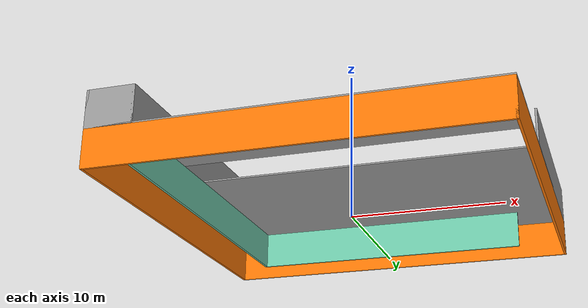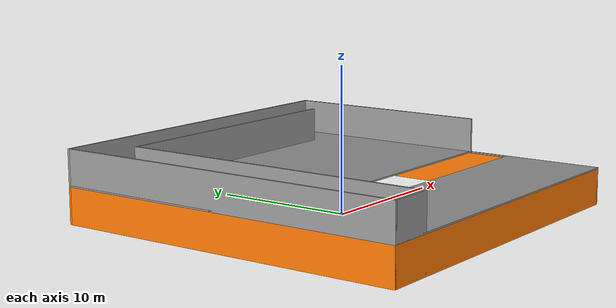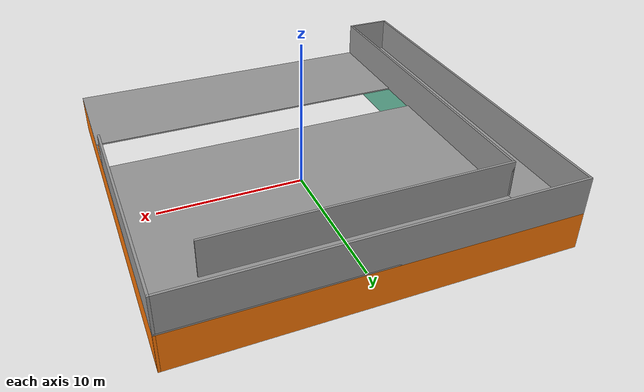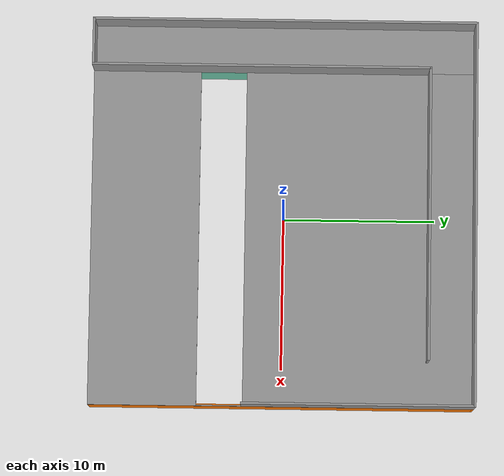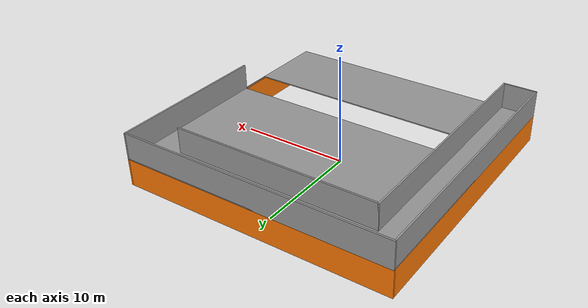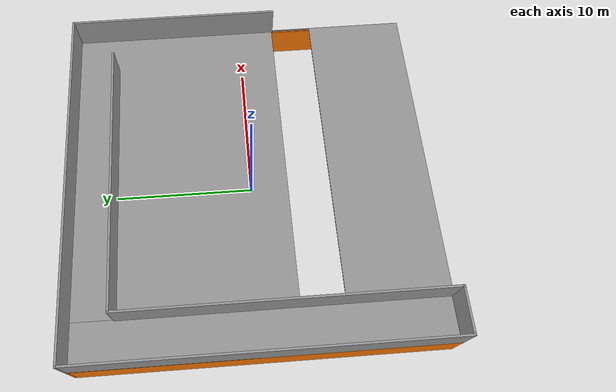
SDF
<?xml version='1.0'?>
<sdf version='1.7'>
  <model name='smart_house_2'>
    <link name='Floor_3'>
      <pose>0 0 2.5 0 -0 0</pose>
      <self_collide>0</self_collide>
      <enable_wind>0</enable_wind>
      <kinematic>0</kinematic>
      <visual name='Floor_3_Visual_0'>
        <pose>-11.0375 0 0.05 0 -0 0</pose>
        <geometry>
          <box>
            <size>3.075 25.15 0.1</size>
          </box>
        </geometry>
        <material>
          <script>
            <uri>file://media/materials/scripts/gazebo.material</uri>
            <name>Gazebo/Grey</name>
          </script>
          <ambient>1 1 1 1</ambient>
          <shader type='pixel'/>
        </material>
        <meta>
          <layer>1</layer>
        </meta>
        <transparency>0</transparency>
        <cast_shadows>1</cast_shadows>
      </visual>
      <visual name='Floor_3_Visual_1'>
        <pose>1.5375 -9.0375 0.05 0 -0 0</pose>
        <geometry>
          <box>
            <size>22.075 7.075 0.1</size>
          </box>
        </geometry>
        <material>
          <script>
            <uri>file://media/materials/scripts/gazebo.material</uri>
            <name>Gazebo/Grey</name>
          </script>
          <ambient>1 1 1 1</ambient>
          <shader type='pixel'/>
        </material>
        <meta>
          <layer>1</layer>
        </meta>
        <transparency>0</transparency>
        <cast_shadows>1</cast_shadows>
      </visual>
      <visual name='Floor_3_Visual_2'>
        <pose>12.5375 3.5375 0.05 0 -0 0</pose>
        <geometry>
          <box>
            <size>0.075 18.075 0.1</size>
          </box>
        </geometry>
        <material>
          <script>
            <uri>file://media/materials/scripts/gazebo.material</uri>
            <name>Gazebo/Grey</name>
          </script>
          <ambient>1 1 1 1</ambient>
          <shader type='pixel'/>
        </material>
        <meta>
          <layer>1</layer>
        </meta>
        <transparency>0</transparency>
        <cast_shadows>1</cast_shadows>
      </visual>
      <visual name='Floor_3_Visual_3'>
        <pose>1.5 5.0375 0.05 0 -0 0</pose>
        <geometry>
          <box>
            <size>22 15.075 0.1</size>
          </box>
        </geometry>
        <material>
          <script>
            <uri>file://media/materials/scripts/gazebo.material</uri>
            <name>Gazebo/Grey</name>
          </script>
          <ambient>1 1 1 1</ambient>
          <shader type='pixel'/>
        </material>
        <meta>
          <layer>1</layer>
        </meta>
        <transparency>0</transparency>
        <cast_shadows>1</cast_shadows>
      </visual>
      <collision name='Floor_3_Collision_0'>
        <laser_retro>0</laser_retro>
        <max_contacts>10</max_contacts>
        <pose>-11.0375 0 0.05 0 -0 0</pose>
        <geometry>
          <box>
            <size>3.075 25.15 0.1</size>
          </box>
        </geometry>
        <surface>
          <friction>
            <ode>
              <mu>1</mu>
              <mu2>1</mu2>
              <fdir1>0 0 0</fdir1>
              <slip1>0</slip1>
              <slip2>0</slip2>
            </ode>
            <torsional>
              <coefficient>1</coefficient>
              <patch_radius>0</patch_radius>
              <surface_radius>0</surface_radius>
              <use_patch_radius>1</use_patch_radius>
              <ode>
                <slip>0</slip>
              </ode>
            </torsional>
          </friction>
          <bounce>
            <restitution_coefficient>0</restitution_coefficient>
            <threshold>1e+06</threshold>
          </bounce>
          <contact>
            <collide_without_contact>0</collide_without_contact>
            <collide_without_contact_bitmask>1</collide_without_contact_bitmask>
            <collide_bitmask>1</collide_bitmask>
            <ode>
              <soft_cfm>0</soft_cfm>
              <soft_erp>0.2</soft_erp>
              <kp>1e+13</kp>
              <kd>1</kd>
              <max_vel>0.01</max_vel>
              <min_depth>0</min_depth>
            </ode>
            <bullet>
              <split_impulse>1</split_impulse>
              <split_impulse_penetration_threshold>-0.01</split_impulse_penetration_threshold>
              <soft_cfm>0</soft_cfm>
              <soft_erp>0.2</soft_erp>
              <kp>1e+13</kp>
              <kd>1</kd>
            </bullet>
          </contact>
        </surface>
      </collision>
      <collision name='Floor_3_Collision_1'>
        <laser_retro>0</laser_retro>
        <max_contacts>10</max_contacts>
        <pose>1.5375 -9.0375 0.05 0 -0 0</pose>
        <geometry>
          <box>
            <size>22.075 7.075 0.1</size>
          </box>
        </geometry>
        <surface>
          <friction>
            <ode>
              <mu>1</mu>
              <mu2>1</mu2>
              <fdir1>0 0 0</fdir1>
              <slip1>0</slip1>
              <slip2>0</slip2>
            </ode>
            <torsional>
              <coefficient>1</coefficient>
              <patch_radius>0</patch_radius>
              <surface_radius>0</surface_radius>
              <use_patch_radius>1</use_patch_radius>
              <ode>
                <slip>0</slip>
              </ode>
            </torsional>
          </friction>
          <bounce>
            <restitution_coefficient>0</restitution_coefficient>
            <threshold>1e+06</threshold>
          </bounce>
          <contact>
            <collide_without_contact>0</collide_without_contact>
            <collide_without_contact_bitmask>1</collide_without_contact_bitmask>
            <collide_bitmask>1</collide_bitmask>
            <ode>
              <soft_cfm>0</soft_cfm>
              <soft_erp>0.2</soft_erp>
              <kp>1e+13</kp>
              <kd>1</kd>
              <max_vel>0.01</max_vel>
              <min_depth>0</min_depth>
            </ode>
            <bullet>
              <split_impulse>1</split_impulse>
              <split_impulse_penetration_threshold>-0.01</split_impulse_penetration_threshold>
              <soft_cfm>0</soft_cfm>
              <soft_erp>0.2</soft_erp>
              <kp>1e+13</kp>
              <kd>1</kd>
            </bullet>
          </contact>
        </surface>
      </collision>
      <collision name='Floor_3_Collision_2'>
        <laser_retro>0</laser_retro>
        <max_contacts>10</max_contacts>
        <pose>12.5375 3.5375 0.05 0 -0 0</pose>
        <geometry>
          <box>
            <size>0.075 18.075 0.1</size>
          </box>
        </geometry>
        <surface>
          <friction>
            <ode>
              <mu>1</mu>
              <mu2>1</mu2>
              <fdir1>0 0 0</fdir1>
              <slip1>0</slip1>
              <slip2>0</slip2>
            </ode>
            <torsional>
              <coefficient>1</coefficient>
              <patch_radius>0</patch_radius>
              <surface_radius>0</surface_radius>
              <use_patch_radius>1</use_patch_radius>
              <ode>
                <slip>0</slip>
              </ode>
            </torsional>
          </friction>
          <bounce>
            <restitution_coefficient>0</restitution_coefficient>
            <threshold>1e+06</threshold>
          </bounce>
          <contact>
            <collide_without_contact>0</collide_without_contact>
            <collide_without_contact_bitmask>1</collide_without_contact_bitmask>
            <collide_bitmask>1</collide_bitmask>
            <ode>
              <soft_cfm>0</soft_cfm>
              <soft_erp>0.2</soft_erp>
              <kp>1e+13</kp>
              <kd>1</kd>
              <max_vel>0.01</max_vel>
              <min_depth>0</min_depth>
            </ode>
            <bullet>
              <split_impulse>1</split_impulse>
              <split_impulse_penetration_threshold>-0.01</split_impulse_penetration_threshold>
              <soft_cfm>0</soft_cfm>
              <soft_erp>0.2</soft_erp>
              <kp>1e+13</kp>
              <kd>1</kd>
            </bullet>
          </contact>
        </surface>
      </collision>
      <collision name='Floor_3_Collision_3'>
        <laser_retro>0</laser_retro>
        <max_contacts>10</max_contacts>
        <pose>1.5 5.0375 0.05 0 -0 0</pose>
        <geometry>
          <box>
            <size>22 15.075 0.1</size>
          </box>
        </geometry>
        <surface>
          <friction>
            <ode>
              <mu>1</mu>
              <mu2>1</mu2>
              <fdir1>0 0 0</fdir1>
              <slip1>0</slip1>
              <slip2>0</slip2>
            </ode>
            <torsional>
              <coefficient>1</coefficient>
              <patch_radius>0</patch_radius>
              <surface_radius>0</surface_radius>
              <use_patch_radius>1</use_patch_radius>
              <ode>
                <slip>0</slip>
              </ode>
            </torsional>
          </friction>
          <bounce>
            <restitution_coefficient>0</restitution_coefficient>
            <threshold>1e+06</threshold>
          </bounce>
          <contact>
            <collide_without_contact>0</collide_without_contact>
            <collide_without_contact_bitmask>1</collide_without_contact_bitmask>
            <collide_bitmask>1</collide_bitmask>
            <ode>
              <soft_cfm>0</soft_cfm>
              <soft_erp>0.2</soft_erp>
              <kp>1e+13</kp>
              <kd>1</kd>
              <max_vel>0.01</max_vel>
              <min_depth>0</min_depth>
            </ode>
            <bullet>
              <split_impulse>1</split_impulse>
              <split_impulse_penetration_threshold>-0.01</split_impulse_penetration_threshold>
              <soft_cfm>0</soft_cfm>
              <soft_erp>0.2</soft_erp>
              <kp>1e+13</kp>
              <kd>1</kd>
            </bullet>
          </contact>
        </surface>
      </collision>
    </link>
    <link name='Wall_0'>
      <pose>0 -12.5 0 0 -0 0</pose>
      <self_collide>0</self_collide>
      <enable_wind>0</enable_wind>
      <kinematic>0</kinematic>
      <visual name='Wall_0_Visual'>
        <pose>0 0 1.25 0 -0 0</pose>
        <geometry>
          <box>
            <size>25.15 0.15 2.5</size>
          </box>
        </geometry>
        <material>
          <script>
            <uri>file://media/materials/scripts/gazebo.material</uri>
            <name>Gazebo/Grey</name>
          </script>
          <ambient>0.996078 0.47451 0.0196078 1</ambient>
          <shader type='pixel'/>
        </material>
        <meta>
          <layer>0</layer>
        </meta>
        <transparency>0</transparency>
        <cast_shadows>1</cast_shadows>
      </visual>
      <collision name='Wall_0_Collision'>
        <laser_retro>0</laser_retro>
        <max_contacts>10</max_contacts>
        <pose>0 0 1.25 0 -0 0</pose>
        <geometry>
          <box>
            <size>25.15 0.15 2.5</size>
          </box>
        </geometry>
        <surface>
          <friction>
            <ode>
              <mu>1</mu>
              <mu2>1</mu2>
              <fdir1>0 0 0</fdir1>
              <slip1>0</slip1>
              <slip2>0</slip2>
            </ode>
            <torsional>
              <coefficient>1</coefficient>
              <patch_radius>0</patch_radius>
              <surface_radius>0</surface_radius>
              <use_patch_radius>1</use_patch_radius>
              <ode>
                <slip>0</slip>
              </ode>
            </torsional>
          </friction>
          <bounce>
            <restitution_coefficient>0</restitution_coefficient>
            <threshold>1e+06</threshold>
          </bounce>
          <contact>
            <collide_without_contact>0</collide_without_contact>
            <collide_without_contact_bitmask>1</collide_without_contact_bitmask>
            <collide_bitmask>1</collide_bitmask>
            <ode>
              <soft_cfm>0</soft_cfm>
              <soft_erp>0.2</soft_erp>
              <kp>1e+13</kp>
              <kd>1</kd>
              <max_vel>0.01</max_vel>
              <min_depth>0</min_depth>
            </ode>
            <bullet>
              <split_impulse>1</split_impulse>
              <split_impulse_penetration_threshold>-0.01</split_impulse_penetration_threshold>
              <soft_cfm>0</soft_cfm>
              <soft_erp>0.2</soft_erp>
              <kp>1e+13</kp>
              <kd>1</kd>
            </bullet>
          </contact>
        </surface>
      </collision>
    </link>
    <link name='Wall_1'>
      <pose>12.5 0 0 0 -0 1.5708</pose>
      <self_collide>0</self_collide>
      <enable_wind>0</enable_wind>
      <kinematic>0</kinematic>
      <visual name='Wall_1_Visual'>
        <pose>0 0 1.25 0 -0 0</pose>
        <geometry>
          <box>
            <size>25.15 0.15 2.5</size>
          </box>
        </geometry>
        <material>
          <script>
            <uri>file://media/materials/scripts/gazebo.material</uri>
            <name>Gazebo/Grey</name>
          </script>
          <ambient>0.996078 0.47451 0.0196078 1</ambient>
          <shader type='pixel'/>
        </material>
        <meta>
          <layer>0</layer>
        </meta>
        <transparency>0</transparency>
        <cast_shadows>1</cast_shadows>
      </visual>
      <collision name='Wall_1_Collision'>
        <laser_retro>0</laser_retro>
        <max_contacts>10</max_contacts>
        <pose>0 0 1.25 0 -0 0</pose>
        <geometry>
          <box>
            <size>25.15 0.15 2.5</size>
          </box>
        </geometry>
        <surface>
          <friction>
            <ode>
              <mu>1</mu>
              <mu2>1</mu2>
              <fdir1>0 0 0</fdir1>
              <slip1>0</slip1>
              <slip2>0</slip2>
            </ode>
            <torsional>
              <coefficient>1</coefficient>
              <patch_radius>0</patch_radius>
              <surface_radius>0</surface_radius>
              <use_patch_radius>1</use_patch_radius>
              <ode>
                <slip>0</slip>
              </ode>
            </torsional>
          </friction>
          <bounce>
            <restitution_coefficient>0</restitution_coefficient>
            <threshold>1e+06</threshold>
          </bounce>
          <contact>
            <collide_without_contact>0</collide_without_contact>
            <collide_without_contact_bitmask>1</collide_without_contact_bitmask>
            <collide_bitmask>1</collide_bitmask>
            <ode>
              <soft_cfm>0</soft_cfm>
              <soft_erp>0.2</soft_erp>
              <kp>1e+13</kp>
              <kd>1</kd>
              <max_vel>0.01</max_vel>
              <min_depth>0</min_depth>
            </ode>
            <bullet>
              <split_impulse>1</split_impulse>
              <split_impulse_penetration_threshold>-0.01</split_impulse_penetration_threshold>
              <soft_cfm>0</soft_cfm>
              <soft_erp>0.2</soft_erp>
              <kp>1e+13</kp>
              <kd>1</kd>
            </bullet>
          </contact>
        </surface>
      </collision>
    </link>
    <link name='Wall_13'>
      <pose>-9.5 -1.5 0 0 -0 1.5708</pose>
      <self_collide>0</self_collide>
      <enable_wind>0</enable_wind>
      <kinematic>0</kinematic>
      <visual name='Wall_13_Visual'>
        <pose>0 0 1.25 0 -0 0</pose>
        <geometry>
          <box>
            <size>22.15 0.15 2.5</size>
          </box>
        </geometry>
        <material>
          <script>
            <uri>file://media/materials/scripts/gazebo.material</uri>
            <name>Gazebo/Grey</name>
          </script>
          <ambient>0.435294 0.796078 0.67451 1</ambient>
          <shader type='pixel'/>
        </material>
        <meta>
          <layer>0</layer>
        </meta>
        <transparency>0</transparency>
        <cast_shadows>1</cast_shadows>
      </visual>
      <collision name='Wall_13_Collision'>
        <laser_retro>0</laser_retro>
        <max_contacts>10</max_contacts>
        <pose>0 0 1.25 0 -0 0</pose>
        <geometry>
          <box>
            <size>22.15 0.15 2.5</size>
          </box>
        </geometry>
        <surface>
          <friction>
            <ode>
              <mu>1</mu>
              <mu2>1</mu2>
              <fdir1>0 0 0</fdir1>
              <slip1>0</slip1>
              <slip2>0</slip2>
            </ode>
            <torsional>
              <coefficient>1</coefficient>
              <patch_radius>0</patch_radius>
              <surface_radius>0</surface_radius>
              <use_patch_radius>1</use_patch_radius>
              <ode>
                <slip>0</slip>
              </ode>
            </torsional>
          </friction>
          <bounce>
            <restitution_coefficient>0</restitution_coefficient>
            <threshold>1e+06</threshold>
          </bounce>
          <contact>
            <collide_without_contact>0</collide_without_contact>
            <collide_without_contact_bitmask>1</collide_without_contact_bitmask>
            <collide_bitmask>1</collide_bitmask>
            <ode>
              <soft_cfm>0</soft_cfm>
              <soft_erp>0.2</soft_erp>
              <kp>1e+13</kp>
              <kd>1</kd>
              <max_vel>0.01</max_vel>
              <min_depth>0</min_depth>
            </ode>
            <bullet>
              <split_impulse>1</split_impulse>
              <split_impulse_penetration_threshold>-0.01</split_impulse_penetration_threshold>
              <soft_cfm>0</soft_cfm>
              <soft_erp>0.2</soft_erp>
              <kp>1e+13</kp>
              <kd>1</kd>
            </bullet>
          </contact>
        </surface>
      </collision>
    </link>
    <link name='Wall_14'>
      <pose>0 9.5 0 0 -0 0</pose>
      <self_collide>0</self_collide>
      <enable_wind>0</enable_wind>
      <kinematic>0</kinematic>
      <visual name='Wall_14_Visual'>
        <pose>0 0 1.25 0 -0 0</pose>
        <geometry>
          <box>
            <size>19.15 0.15 2.5</size>
          </box>
        </geometry>
        <material>
          <script>
            <uri>file://media/materials/scripts/gazebo.material</uri>
            <name>Gazebo/Grey</name>
          </script>
          <ambient>0.435294 0.796078 0.67451 1</ambient>
          <shader type='pixel'/>
        </material>
        <meta>
          <layer>0</layer>
        </meta>
        <transparency>0</transparency>
        <cast_shadows>1</cast_shadows>
      </visual>
      <collision name='Wall_14_Collision'>
        <laser_retro>0</laser_retro>
        <max_contacts>10</max_contacts>
        <pose>0 0 1.25 0 -0 0</pose>
        <geometry>
          <box>
            <size>19.15 0.15 2.5</size>
          </box>
        </geometry>
        <surface>
          <friction>
            <ode>
              <mu>1</mu>
              <mu2>1</mu2>
              <fdir1>0 0 0</fdir1>
              <slip1>0</slip1>
              <slip2>0</slip2>
            </ode>
            <torsional>
              <coefficient>1</coefficient>
              <patch_radius>0</patch_radius>
              <surface_radius>0</surface_radius>
              <use_patch_radius>1</use_patch_radius>
              <ode>
                <slip>0</slip>
              </ode>
            </torsional>
          </friction>
          <bounce>
            <restitution_coefficient>0</restitution_coefficient>
            <threshold>1e+06</threshold>
          </bounce>
          <contact>
            <collide_without_contact>0</collide_without_contact>
            <collide_without_contact_bitmask>1</collide_without_contact_bitmask>
            <collide_bitmask>1</collide_bitmask>
            <ode>
              <soft_cfm>0</soft_cfm>
              <soft_erp>0.2</soft_erp>
              <kp>1e+13</kp>
              <kd>1</kd>
              <max_vel>0.01</max_vel>
              <min_depth>0</min_depth>
            </ode>
            <bullet>
              <split_impulse>1</split_impulse>
              <split_impulse_penetration_threshold>-0.01</split_impulse_penetration_threshold>
              <soft_cfm>0</soft_cfm>
              <soft_erp>0.2</soft_erp>
              <kp>1e+13</kp>
              <kd>1</kd>
            </bullet>
          </contact>
        </surface>
      </collision>
    </link>
    <link name='Wall_2'>
      <pose>0 12.5 0 0 -0 3.14159</pose>
      <self_collide>0</self_collide>
      <enable_wind>0</enable_wind>
      <kinematic>0</kinematic>
      <visual name='Wall_2_Visual'>
        <pose>0 0 1.25 0 -0 0</pose>
        <geometry>
          <box>
            <size>25.15 0.15 2.5</size>
          </box>
        </geometry>
        <material>
          <script>
            <uri>file://media/materials/scripts/gazebo.material</uri>
            <name>Gazebo/Grey</name>
          </script>
          <ambient>0.996078 0.47451 0.0196078 1</ambient>
          <shader type='pixel'/>
        </material>
        <meta>
          <layer>0</layer>
        </meta>
        <transparency>0</transparency>
        <cast_shadows>1</cast_shadows>
      </visual>
      <collision name='Wall_2_Collision'>
        <laser_retro>0</laser_retro>
        <max_contacts>10</max_contacts>
        <pose>0 0 1.25 0 -0 0</pose>
        <geometry>
          <box>
            <size>25.15 0.15 2.5</size>
          </box>
        </geometry>
        <surface>
          <friction>
            <ode>
              <mu>1</mu>
              <mu2>1</mu2>
              <fdir1>0 0 0</fdir1>
              <slip1>0</slip1>
              <slip2>0</slip2>
            </ode>
            <torsional>
              <coefficient>1</coefficient>
              <patch_radius>0</patch_radius>
              <surface_radius>0</surface_radius>
              <use_patch_radius>1</use_patch_radius>
              <ode>
                <slip>0</slip>
              </ode>
            </torsional>
          </friction>
          <bounce>
            <restitution_coefficient>0</restitution_coefficient>
            <threshold>1e+06</threshold>
          </bounce>
          <contact>
            <collide_without_contact>0</collide_without_contact>
            <collide_without_contact_bitmask>1</collide_without_contact_bitmask>
            <collide_bitmask>1</collide_bitmask>
            <ode>
              <soft_cfm>0</soft_cfm>
              <soft_erp>0.2</soft_erp>
              <kp>1e+13</kp>
              <kd>1</kd>
              <max_vel>0.01</max_vel>
              <min_depth>0</min_depth>
            </ode>
            <bullet>
              <split_impulse>1</split_impulse>
              <split_impulse_penetration_threshold>-0.01</split_impulse_penetration_threshold>
              <soft_cfm>0</soft_cfm>
              <soft_erp>0.2</soft_erp>
              <kp>1e+13</kp>
              <kd>1</kd>
            </bullet>
          </contact>
        </surface>
      </collision>
    </link>
    <link name='Wall_24'>
      <pose>0 12.5 2.5 0 -0 3.14159</pose>
      <self_collide>0</self_collide>
      <enable_wind>0</enable_wind>
      <kinematic>0</kinematic>
      <visual name='Wall_24_Visual'>
        <pose>0 0 1.25 0 -0 0</pose>
        <geometry>
          <box>
            <size>25.15 0.15 2.5</size>
          </box>
        </geometry>
        <material>
          <script>
            <uri>file://media/materials/scripts/gazebo.material</uri>
            <name>Gazebo/Grey</name>
          </script>
          <ambient>1 1 1 1</ambient>
          <shader type='pixel'/>
        </material>
        <meta>
          <layer>1</layer>
        </meta>
        <transparency>0</transparency>
        <cast_shadows>1</cast_shadows>
      </visual>
      <collision name='Wall_24_Collision'>
        <laser_retro>0</laser_retro>
        <max_contacts>10</max_contacts>
        <pose>0 0 1.25 0 -0 0</pose>
        <geometry>
          <box>
            <size>25.15 0.15 2.5</size>
          </box>
        </geometry>
        <surface>
          <friction>
            <ode>
              <mu>1</mu>
              <mu2>1</mu2>
              <fdir1>0 0 0</fdir1>
              <slip1>0</slip1>
              <slip2>0</slip2>
            </ode>
            <torsional>
              <coefficient>1</coefficient>
              <patch_radius>0</patch_radius>
              <surface_radius>0</surface_radius>
              <use_patch_radius>1</use_patch_radius>
              <ode>
                <slip>0</slip>
              </ode>
            </torsional>
          </friction>
          <bounce>
            <restitution_coefficient>0</restitution_coefficient>
            <threshold>1e+06</threshold>
          </bounce>
          <contact>
            <collide_without_contact>0</collide_without_contact>
            <collide_without_contact_bitmask>1</collide_without_contact_bitmask>
            <collide_bitmask>1</collide_bitmask>
            <ode>
              <soft_cfm>0</soft_cfm>
              <soft_erp>0.2</soft_erp>
              <kp>1e+13</kp>
              <kd>1</kd>
              <max_vel>0.01</max_vel>
              <min_depth>0</min_depth>
            </ode>
            <bullet>
              <split_impulse>1</split_impulse>
              <split_impulse_penetration_threshold>-0.01</split_impulse_penetration_threshold>
              <soft_cfm>0</soft_cfm>
              <soft_erp>0.2</soft_erp>
              <kp>1e+13</kp>
              <kd>1</kd>
            </bullet>
          </contact>
        </surface>
      </collision>
    </link>
    <link name='Wall_25'>
      <pose>-12.5 0 2.5 0 0 -1.5708</pose>
      <self_collide>0</self_collide>
      <enable_wind>0</enable_wind>
      <kinematic>0</kinematic>
      <visual name='Wall_25_Visual'>
        <pose>0 0 1.25 0 -0 0</pose>
        <geometry>
          <box>
            <size>25.15 0.15 2.5</size>
          </box>
        </geometry>
        <material>
          <script>
            <uri>file://media/materials/scripts/gazebo.material</uri>
            <name>Gazebo/Grey</name>
          </script>
          <ambient>1 1 1 1</ambient>
          <shader type='pixel'/>
        </material>
        <meta>
          <layer>1</layer>
        </meta>
        <transparency>0</transparency>
        <cast_shadows>1</cast_shadows>
      </visual>
      <collision name='Wall_25_Collision'>
        <laser_retro>0</laser_retro>
        <max_contacts>10</max_contacts>
        <pose>0 0 1.25 0 -0 0</pose>
        <geometry>
          <box>
            <size>25.15 0.15 2.5</size>
          </box>
        </geometry>
        <surface>
          <friction>
            <ode>
              <mu>1</mu>
              <mu2>1</mu2>
              <fdir1>0 0 0</fdir1>
              <slip1>0</slip1>
              <slip2>0</slip2>
            </ode>
            <torsional>
              <coefficient>1</coefficient>
              <patch_radius>0</patch_radius>
              <surface_radius>0</surface_radius>
              <use_patch_radius>1</use_patch_radius>
              <ode>
                <slip>0</slip>
              </ode>
            </torsional>
          </friction>
          <bounce>
            <restitution_coefficient>0</restitution_coefficient>
            <threshold>1e+06</threshold>
          </bounce>
          <contact>
            <collide_without_contact>0</collide_without_contact>
            <collide_without_contact_bitmask>1</collide_without_contact_bitmask>
            <collide_bitmask>1</collide_bitmask>
            <ode>
              <soft_cfm>0</soft_cfm>
              <soft_erp>0.2</soft_erp>
              <kp>1e+13</kp>
              <kd>1</kd>
              <max_vel>0.01</max_vel>
              <min_depth>0</min_depth>
            </ode>
            <bullet>
              <split_impulse>1</split_impulse>
              <split_impulse_penetration_threshold>-0.01</split_impulse_penetration_threshold>
              <soft_cfm>0</soft_cfm>
              <soft_erp>0.2</soft_erp>
              <kp>1e+13</kp>
              <kd>1</kd>
            </bullet>
          </contact>
        </surface>
      </collision>
    </link>
    <link name='Wall_26'>
      <pose>-9.5 -1.5 2.5 0 -0 1.5708</pose>
      <self_collide>0</self_collide>
      <enable_wind>0</enable_wind>
      <kinematic>0</kinematic>
      <visual name='Wall_26_Visual'>
        <pose>0 0 1.25 0 -0 0</pose>
        <geometry>
          <box>
            <size>22.15 0.15 2.5</size>
          </box>
        </geometry>
        <material>
          <script>
            <uri>file://media/materials/scripts/gazebo.material</uri>
            <name>Gazebo/Grey</name>
          </script>
          <ambient>1 1 1 1</ambient>
          <shader type='pixel'/>
        </material>
        <meta>
          <layer>1</layer>
        </meta>
        <transparency>0</transparency>
        <cast_shadows>1</cast_shadows>
      </visual>
      <collision name='Wall_26_Collision'>
        <laser_retro>0</laser_retro>
        <max_contacts>10</max_contacts>
        <pose>0 0 1.25 0 -0 0</pose>
        <geometry>
          <box>
            <size>22.15 0.15 2.5</size>
          </box>
        </geometry>
        <surface>
          <friction>
            <ode>
              <mu>1</mu>
              <mu2>1</mu2>
              <fdir1>0 0 0</fdir1>
              <slip1>0</slip1>
              <slip2>0</slip2>
            </ode>
            <torsional>
              <coefficient>1</coefficient>
              <patch_radius>0</patch_radius>
              <surface_radius>0</surface_radius>
              <use_patch_radius>1</use_patch_radius>
              <ode>
                <slip>0</slip>
              </ode>
            </torsional>
          </friction>
          <bounce>
            <restitution_coefficient>0</restitution_coefficient>
            <threshold>1e+06</threshold>
          </bounce>
          <contact>
            <collide_without_contact>0</collide_without_contact>
            <collide_without_contact_bitmask>1</collide_without_contact_bitmask>
            <collide_bitmask>1</collide_bitmask>
            <ode>
              <soft_cfm>0</soft_cfm>
              <soft_erp>0.2</soft_erp>
              <kp>1e+13</kp>
              <kd>1</kd>
              <max_vel>0.01</max_vel>
              <min_depth>0</min_depth>
            </ode>
            <bullet>
              <split_impulse>1</split_impulse>
              <split_impulse_penetration_threshold>-0.01</split_impulse_penetration_threshold>
              <soft_cfm>0</soft_cfm>
              <soft_erp>0.2</soft_erp>
              <kp>1e+13</kp>
              <kd>1</kd>
            </bullet>
          </contact>
        </surface>
      </collision>
    </link>
    <link name='Wall_27'>
      <pose>0 9.5 2.5 0 -0 0</pose>
      <self_collide>0</self_collide>
      <enable_wind>0</enable_wind>
      <kinematic>0</kinematic>
      <visual name='Wall_27_Visual'>
        <pose>0 0 1.25 0 -0 0</pose>
        <geometry>
          <box>
            <size>19.15 0.15 2.5</size>
          </box>
        </geometry>
        <material>
          <script>
            <uri>file://media/materials/scripts/gazebo.material</uri>
            <name>Gazebo/Grey</name>
          </script>
          <ambient>1 1 1 1</ambient>
          <shader type='pixel'/>
        </material>
        <meta>
          <layer>1</layer>
        </meta>
        <transparency>0</transparency>
        <cast_shadows>1</cast_shadows>
      </visual>
      <collision name='Wall_27_Collision'>
        <laser_retro>0</laser_retro>
        <max_contacts>10</max_contacts>
        <pose>0 0 1.25 0 -0 0</pose>
        <geometry>
          <box>
            <size>19.15 0.15 2.5</size>
          </box>
        </geometry>
        <surface>
          <friction>
            <ode>
              <mu>1</mu>
              <mu2>1</mu2>
              <fdir1>0 0 0</fdir1>
              <slip1>0</slip1>
              <slip2>0</slip2>
            </ode>
            <torsional>
              <coefficient>1</coefficient>
              <patch_radius>0</patch_radius>
              <surface_radius>0</surface_radius>
              <use_patch_radius>1</use_patch_radius>
              <ode>
                <slip>0</slip>
              </ode>
            </torsional>
          </friction>
          <bounce>
            <restitution_coefficient>0</restitution_coefficient>
            <threshold>1e+06</threshold>
          </bounce>
          <contact>
            <collide_without_contact>0</collide_without_contact>
            <collide_without_contact_bitmask>1</collide_without_contact_bitmask>
            <collide_bitmask>1</collide_bitmask>
            <ode>
              <soft_cfm>0</soft_cfm>
              <soft_erp>0.2</soft_erp>
              <kp>1e+13</kp>
              <kd>1</kd>
              <max_vel>0.01</max_vel>
              <min_depth>0</min_depth>
            </ode>
            <bullet>
              <split_impulse>1</split_impulse>
              <split_impulse_penetration_threshold>-0.01</split_impulse_penetration_threshold>
              <soft_cfm>0</soft_cfm>
              <soft_erp>0.2</soft_erp>
              <kp>1e+13</kp>
              <kd>1</kd>
            </bullet>
          </contact>
        </surface>
      </collision>
    </link>
    <link name='Wall_28'>
      <pose>-11 -12.5 2.5 0 -0 0</pose>
      <self_collide>0</self_collide>
      <enable_wind>0</enable_wind>
      <kinematic>0</kinematic>
      <visual name='Wall_28_Visual'>
        <pose>0 0 1.25 0 -0 0</pose>
        <geometry>
          <box>
            <size>3.15 0.15 2.5</size>
          </box>
        </geometry>
        <material>
          <script>
            <uri>file://media/materials/scripts/gazebo.material</uri>
            <name>Gazebo/Grey</name>
          </script>
          <ambient>1 1 1 1</ambient>
          <shader type='pixel'/>
        </material>
        <meta>
          <layer>1</layer>
        </meta>
        <transparency>0</transparency>
        <cast_shadows>1</cast_shadows>
      </visual>
      <collision name='Wall_28_Collision'>
        <laser_retro>0</laser_retro>
        <max_contacts>10</max_contacts>
        <pose>0 0 1.25 0 -0 0</pose>
        <geometry>
          <box>
            <size>3.15 0.15 2.5</size>
          </box>
        </geometry>
        <surface>
          <friction>
            <ode>
              <mu>1</mu>
              <mu2>1</mu2>
              <fdir1>0 0 0</fdir1>
              <slip1>0</slip1>
              <slip2>0</slip2>
            </ode>
            <torsional>
              <coefficient>1</coefficient>
              <patch_radius>0</patch_radius>
              <surface_radius>0</surface_radius>
              <use_patch_radius>1</use_patch_radius>
              <ode>
                <slip>0</slip>
              </ode>
            </torsional>
          </friction>
          <bounce>
            <restitution_coefficient>0</restitution_coefficient>
            <threshold>1e+06</threshold>
          </bounce>
          <contact>
            <collide_without_contact>0</collide_without_contact>
            <collide_without_contact_bitmask>1</collide_without_contact_bitmask>
            <collide_bitmask>1</collide_bitmask>
            <ode>
              <soft_cfm>0</soft_cfm>
              <soft_erp>0.2</soft_erp>
              <kp>1e+13</kp>
              <kd>1</kd>
              <max_vel>0.01</max_vel>
              <min_depth>0</min_depth>
            </ode>
            <bullet>
              <split_impulse>1</split_impulse>
              <split_impulse_penetration_threshold>-0.01</split_impulse_penetration_threshold>
              <soft_cfm>0</soft_cfm>
              <soft_erp>0.2</soft_erp>
              <kp>1e+13</kp>
              <kd>1</kd>
            </bullet>
          </contact>
        </surface>
      </collision>
    </link>
    <link name='Wall_3'>
      <pose>-12.5 0 0 0 0 -1.5708</pose>
      <self_collide>0</self_collide>
      <enable_wind>0</enable_wind>
      <kinematic>0</kinematic>
      <visual name='Wall_3_Visual'>
        <pose>0 0 1.25 0 -0 0</pose>
        <geometry>
          <box>
            <size>25.15 0.15 2.5</size>
          </box>
        </geometry>
        <material>
          <script>
            <uri>file://media/materials/scripts/gazebo.material</uri>
            <name>Gazebo/Grey</name>
          </script>
          <ambient>0.996078 0.47451 0.0196078 1</ambient>
          <shader type='pixel'/>
        </material>
        <meta>
          <layer>0</layer>
        </meta>
        <transparency>0</transparency>
        <cast_shadows>1</cast_shadows>
      </visual>
      <collision name='Wall_3_Collision'>
        <laser_retro>0</laser_retro>
        <max_contacts>10</max_contacts>
        <pose>0 0 1.25 0 -0 0</pose>
        <geometry>
          <box>
            <size>25.15 0.15 2.5</size>
          </box>
        </geometry>
        <surface>
          <friction>
            <ode>
              <mu>1</mu>
              <mu2>1</mu2>
              <fdir1>0 0 0</fdir1>
              <slip1>0</slip1>
              <slip2>0</slip2>
            </ode>
            <torsional>
              <coefficient>1</coefficient>
              <patch_radius>0</patch_radius>
              <surface_radius>0</surface_radius>
              <use_patch_radius>1</use_patch_radius>
              <ode>
                <slip>0</slip>
              </ode>
            </torsional>
          </friction>
          <bounce>
            <restitution_coefficient>0</restitution_coefficient>
            <threshold>1e+06</threshold>
          </bounce>
          <contact>
            <collide_without_contact>0</collide_without_contact>
            <collide_without_contact_bitmask>1</collide_without_contact_bitmask>
            <collide_bitmask>1</collide_bitmask>
            <ode>
              <soft_cfm>0</soft_cfm>
              <soft_erp>0.2</soft_erp>
              <kp>1e+13</kp>
              <kd>1</kd>
              <max_vel>0.01</max_vel>
              <min_depth>0</min_depth>
            </ode>
            <bullet>
              <split_impulse>1</split_impulse>
              <split_impulse_penetration_threshold>-0.01</split_impulse_penetration_threshold>
              <soft_cfm>0</soft_cfm>
              <soft_erp>0.2</soft_erp>
              <kp>1e+13</kp>
              <kd>1</kd>
            </bullet>
          </contact>
        </surface>
      </collision>
    </link>
    <link name='Wall_30'>
      <pose>12.5 5 2.5 0 0 -1.5708</pose>
      <self_collide>0</self_collide>
      <enable_wind>0</enable_wind>
      <kinematic>0</kinematic>
      <visual name='Wall_30_Visual'>
        <pose>0 0 1.25 0 -0 0</pose>
        <geometry>
          <box>
            <size>15.15 0.15 2.5</size>
          </box>
        </geometry>
        <material>
          <script>
            <uri>file://media/materials/scripts/gazebo.material</uri>
            <name>Gazebo/Grey</name>
          </script>
          <ambient>1 1 1 1</ambient>
          <shader type='pixel'/>
        </material>
        <meta>
          <layer>1</layer>
        </meta>
        <transparency>0</transparency>
        <cast_shadows>1</cast_shadows>
      </visual>
      <collision name='Wall_30_Collision'>
        <laser_retro>0</laser_retro>
        <max_contacts>10</max_contacts>
        <pose>0 0 1.25 0 -0 0</pose>
        <geometry>
          <box>
            <size>15.15 0.15 2.5</size>
          </box>
        </geometry>
        <surface>
          <friction>
            <ode>
              <mu>1</mu>
              <mu2>1</mu2>
              <fdir1>0 0 0</fdir1>
              <slip1>0</slip1>
              <slip2>0</slip2>
            </ode>
            <torsional>
              <coefficient>1</coefficient>
              <patch_radius>0</patch_radius>
              <surface_radius>0</surface_radius>
              <use_patch_radius>1</use_patch_radius>
              <ode>
                <slip>0</slip>
              </ode>
            </torsional>
          </friction>
          <bounce>
            <restitution_coefficient>0</restitution_coefficient>
            <threshold>1e+06</threshold>
          </bounce>
          <contact>
            <collide_without_contact>0</collide_without_contact>
            <collide_without_contact_bitmask>1</collide_without_contact_bitmask>
            <collide_bitmask>1</collide_bitmask>
            <ode>
              <soft_cfm>0</soft_cfm>
              <soft_erp>0.2</soft_erp>
              <kp>1e+13</kp>
              <kd>1</kd>
              <max_vel>0.01</max_vel>
              <min_depth>0</min_depth>
            </ode>
            <bullet>
              <split_impulse>1</split_impulse>
              <split_impulse_penetration_threshold>-0.01</split_impulse_penetration_threshold>
              <soft_cfm>0</soft_cfm>
              <soft_erp>0.2</soft_erp>
              <kp>1e+13</kp>
              <kd>1</kd>
            </bullet>
          </contact>
        </surface>
      </collision>
    </link>
    <static>1</static>
    <allow_auto_disable>1</allow_auto_disable>
  </model>
</sdf>
